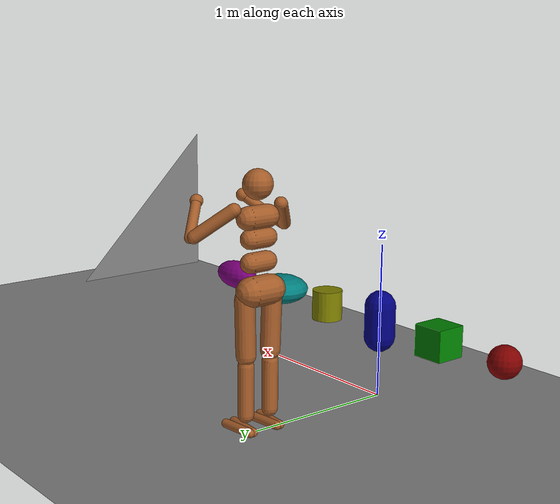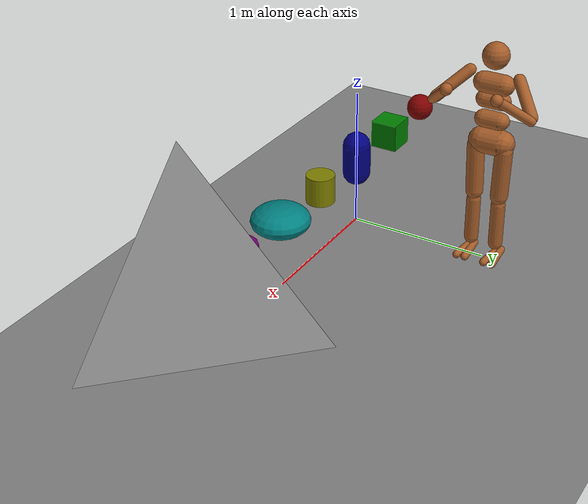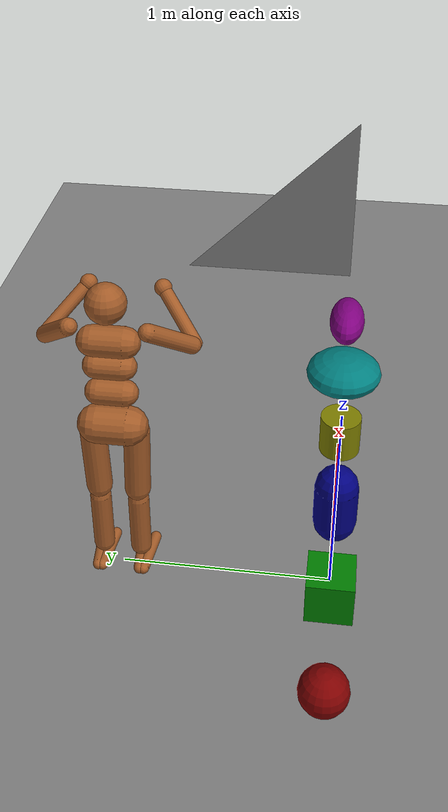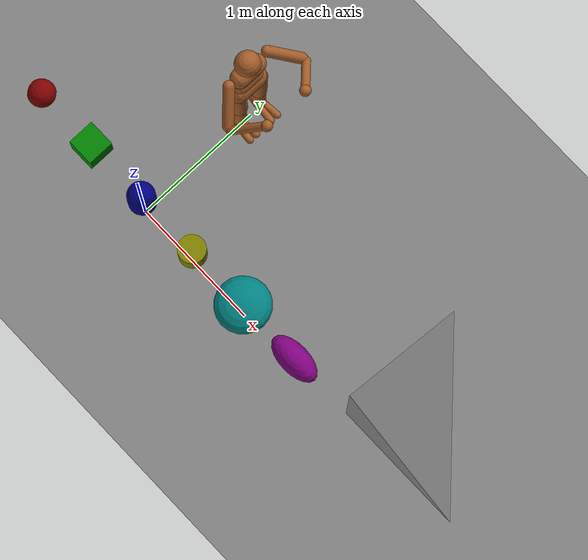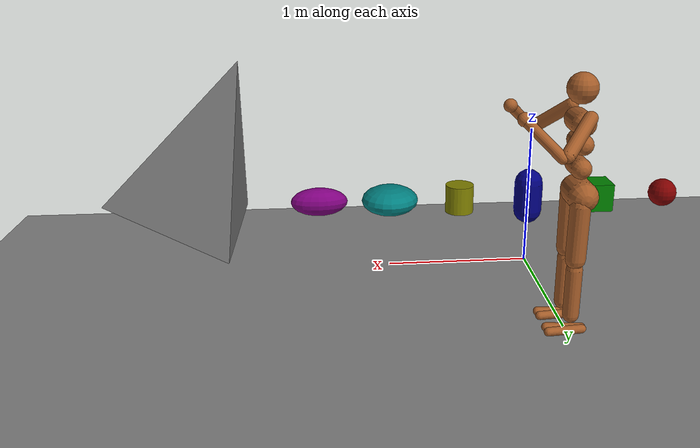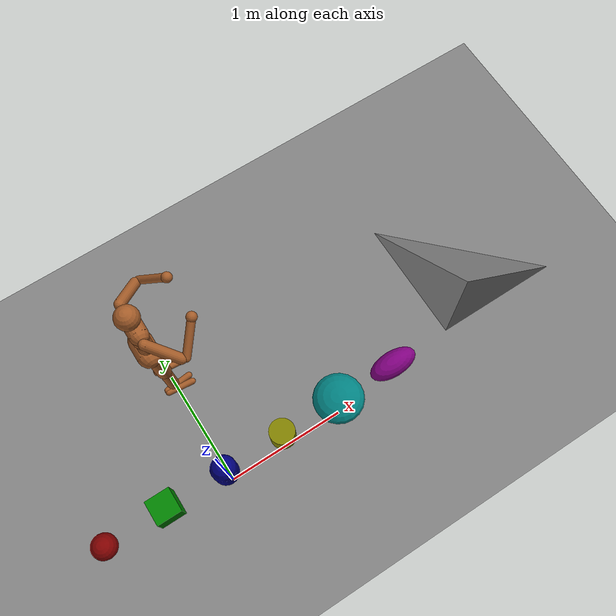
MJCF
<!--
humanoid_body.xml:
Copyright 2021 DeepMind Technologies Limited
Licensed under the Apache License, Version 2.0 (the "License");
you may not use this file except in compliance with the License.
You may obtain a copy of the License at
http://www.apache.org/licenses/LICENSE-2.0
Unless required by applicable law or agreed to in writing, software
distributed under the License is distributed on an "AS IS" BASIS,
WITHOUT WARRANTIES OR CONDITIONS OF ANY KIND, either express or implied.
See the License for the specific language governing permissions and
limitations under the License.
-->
<?xml version="1.0" encoding="utf-8"?>
<mujoco model="inverted_pendulum">
    <compiler angle="radian" meshdir="meshes" autolimits="true" />
    <option timestep="0.002" gravity="0 0 -9.81" integrator="implicitfast" density="1.225"
        viscosity="1.8e-5" />

    <visual>
        <global realtime="1" />
        <quality shadowsize="16384" numslices="28" offsamples="4" />
        <headlight diffuse="1 1 1" specular="0.5 0.5 0.5" active="1" />
        <rgba fog="0 0 0 1" haze="0 1 0 1" />
    </visual>
    <include file="humanoid_body.xml"/>
    <asset>
        <mesh name="tetrahedron" vertex="0 0 0 1 0 0 0 1 0 0 0 1" />
        <texture type="skybox" file="../asset/desert.png"
            gridsize="3 4" gridlayout=".U..LFRB.D.." />
        <texture name="plane" type="2d" builtin="checker" rgb1=".1 .1 .1" rgb2=".9 .9 .9"
            width="512" height="512" mark="cross" markrgb=".8 .8 .8" />
        <material name="plane" reflectance="0.3" texture="plane" texrepeat="1 1" texuniform="true"/>
        <material name="box" rgba="0 0.5 0 1"  emission="0"/>
    </asset>

    <worldbody>
        <geom name="floor" pos="0 0 0" size="0 0 .25" type="plane" material="plane"
            condim="3" />
        <light directional="true" ambient=".3 .3 .3" pos="30 30 30" dir="0 -.5 -1"
            diffuse=".5 .5 .5" specular=".5 .5 .5" />

        <body pos="-1 0 .5">
            <freejoint />
            <geom type="sphere" size="0.1" rgba=".5 0 0 1" />
        </body>
        <body pos="-0.5 0 .5">
            <freejoint />
            <geom type="box" size="0.1 0.1 0.1" material="box"/>
        </body>
        <body pos="0 0 .5">
            <freejoint />
            <geom type="capsule" size="0.1 0.1" rgba="0 0 .5 1" />
        </body>
        <body pos=".5 0 .5">
            <freejoint />
            <geom type="cylinder" size="0.1 0.1" rgba=".5 .5 0 1" />
        </body>
        <body pos="1 0 .5">
            <freejoint />
            <geom type="ellipsoid" size="0.2 0.2 0.1" rgba="0 .5 .5 1" />
        </body>
        <body pos="1.5 0 .5">
            <freejoint />
            <geom type="ellipsoid" size="0.2 0.1 0.1" rgba=".5 0 .5 1" />
        </body>

        <body pos="2.0 0 .5">
            <freejoint />
            <geom type="mesh" mesh="tetrahedron" rgba=".5 .5 .5 1" />
        </body>
    </worldbody>
</mujoco>

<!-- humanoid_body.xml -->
<mujoco model="Humanoid body">

  <asset>
    <texture type="skybox" builtin="gradient" rgb1=".3 .5 .7" rgb2="0 0 0" width="512" height="512"/>
    <texture name="body" type="cube" builtin="flat" mark="cross" width="128" height="128"
             rgb1="0.8 0.6 0.4" rgb2="0.8 0.6 0.4" markrgb="1 1 1"/>
    <material name="body" texture="body" texuniform="true" rgba="0.8 0.6 .4 1"/>
    <texture name="grid" type="2d" builtin="checker" width="512" height="512" rgb1=".1 .2 .3" rgb2=".2 .3 .4"/>
    <material name="grid" texture="grid" texrepeat="1 1" texuniform="true" reflectance=".2"/>
  </asset>

  <default>
    <motor ctrlrange="-1 1" ctrllimited="true"/>
    <default class="body">
      <geom type="capsule" condim="1" friction=".7" solimp=".9 .99 .003" solref=".015 1" material="body"/>
      <joint type="hinge" damping=".2" stiffness="1" armature=".01" limited="true" solimplimit="0 .99 .01"/>
      <default class="big_joint">
        <joint damping="5" stiffness="10"/>
        <default class="big_stiff_joint">
          <joint stiffness="20"/>
        </default>
      </default>
    </default>
  </default>

  <visual>
    <map force="0.1" zfar="30"/>
    <rgba haze="0.15 0.25 0.35 1"/>
    <quality shadowsize="4096"/>
    <global offwidth="800" offheight="800"/>
  </visual>

  <worldbody>
    <body name="torso" pos="0 1 1.3" childclass="body">
      <camera name="back" pos="-3 0 1" xyaxes="0 -1 0 1 0 2" mode="trackcom"/>
      <camera name="side" pos="0 -3 1" xyaxes="1 0 0 0 1 2" mode="trackcom"/>
      <freejoint name="root"/>
      <geom name="torso" fromto="0 -.07 0 0 .07 0" size=".07"/>
      <geom name="upper_waist" fromto="-.01 -.06 -.12 -.01 .06 -.12" size=".06"/>
      <body name="head" pos="0 0 .19">
        <geom name="head" type="sphere" size=".09"/>
        <camera name="egocentric" pos=".09 0 0" xyaxes="0 -1 0 .1 0 1" fovy="80"/>
      </body>
      <body name="lower_waist" pos="-.01 0 -.26">
        <geom name="lower_waist" fromto="0 -.06 0 0 .06 0" size=".06"/>
        <joint name="abdomen_z" pos="0 0 .065" axis="0 0 1" range="-45 45" class="big_stiff_joint"/>
        <joint name="abdomen_y" pos="0 0 .065" axis="0 1 0" range="-75 30" class="big_joint"/>
        <body name="pelvis" pos="0 0 -.165">
          <joint name="abdomen_x" pos="0 0 .1" axis="1 0 0" range="-35 35" class="big_joint"/>
          <geom name="butt" fromto="-.02 -.07 0 -.02 .07 0" size=".09"/>
          <body name="right_thigh" pos="0 -.1 -.04">
            <joint name="right_hip_x" axis="1 0 0" range="-25 5" class="big_joint"/>
            <joint name="right_hip_z" axis="0 0 1" range="-60 35" class="big_joint"/>
            <joint name="right_hip_y" axis="0 1 0" range="-110 20" class="big_stiff_joint"/>
            <geom name="right_thigh" fromto="0 0 0 0 .01 -.34" size=".06"/>
            <body name="right_shin" pos="0 .01 -.403">
              <joint name="right_knee" pos="0 0 .02" axis="0 -1 0" range="-160 2"/>
              <geom name="right_shin" fromto="0 0 0 0 0 -.3"  size=".049"/>
              <body name="right_foot" pos="0 0 -.39">
                <joint name="right_ankle_y" pos="0 0 .08" axis="0 1 0" range="-50 50" stiffness="6"/>
                <joint name="right_ankle_x" pos="0 0 .04" axis="1 0 .5" range="-50 50" stiffness="3"/>
                <geom name="right_right_foot" fromto="-.07 -.02 0 .14 -.04 0" size=".027"/>
                <geom name="left_right_foot" fromto="-.07 0 0 .14  .02 0" size=".027"/>
              </body>
            </body>
          </body>
          <body name="left_thigh" pos="0 .1 -.04">
            <joint name="left_hip_x" axis="-1 0 0" range="-25 5" class="big_joint"/>
            <joint name="left_hip_z" axis="0 0 -1" range="-60 35" class="big_joint"/>
            <joint name="left_hip_y" axis="0 1 0" range="-110 20" class="big_stiff_joint"/>
            <geom name="left_thigh" fromto="0 0 0 0 -.01 -.34" size=".06"/>
            <body name="left_shin" pos="0 -.01 -.403">
              <joint name="left_knee" pos="0 0 .02" axis="0 -1 0" range="-160 2"/>
              <geom name="left_shin" fromto="0 0 0 0 0 -.3"  size=".049"/>
              <body name="left_foot" pos="0 0 -.39">
                <joint name="left_ankle_y" pos="0 0 .08" axis="0 1 0" range="-50 50" stiffness="6"/>
                <joint name="left_ankle_x" pos="0 0 .04" axis="1 0 .5" range="-50 50" stiffness="3"/>
                <geom name="left_left_foot" fromto="-.07 .02 0 .14 .04 0" size=".027"/>
                <geom name="right_left_foot" fromto="-.07 0 0 .14 -.02 0" size=".027"/>
              </body>
            </body>
          </body>
        </body>
      </body>
      <body name="right_upper_arm" pos="0 -.17 .06">
        <joint name="right_shoulder1" axis="2 1 1"  range="-85 60"/>
        <joint name="right_shoulder2" axis="0 -1 1" range="-85 60"/>
        <geom name="right_upper_arm" fromto="0 0 0 .16 -.16 -.16" size=".04 .16"/>
        <body name="right_lower_arm" pos=".18 -.18 -.18">
          <joint name="right_elbow" axis="0 -1 1" range="-90 50" stiffness="0"/>
          <geom name="right_lower_arm" fromto=".01 .01 .01 .17 .17 .17" size=".031"/>
          <body name="right_hand" pos=".18 .18 .18">
            <geom name="right_hand" type="sphere" size=".04" zaxis="1 1 1"/>
          </body>
        </body>
      </body>
      <body name="left_upper_arm" pos="0 .17 .06">
        <joint name="left_shoulder1" axis="2 -1 1" range="-60 85"/>
        <joint name="left_shoulder2" axis="0 1 1"  range="-60 85"/>
        <geom name="left_upper_arm" fromto="0 0 0 .16 .16 -.16" size=".04 .16"/>
        <body name="left_lower_arm" pos=".18 .18 -.18">
          <joint name="left_elbow" axis="0 -1 -1" range="-90 50" stiffness="0"/>
          <geom name="left_lower_arm" fromto=".01 -.01 .01 .17 -.17 .17" size=".031"/>
          <body name="left_hand" pos=".18 -.18 .18">
            <geom name="left_hand" type="sphere" size=".04" zaxis="1 -1 1"/>
          </body>
        </body>
      </body>
    </body>
  </worldbody>

  <actuator>
    <motor name="abdomen_y"       gear="40"  joint="abdomen_y"/>
    <motor name="abdomen_z"       gear="40"  joint="abdomen_z"/>
    <motor name="abdomen_x"       gear="40"  joint="abdomen_x"/>
    <motor name="right_hip_x"     gear="40"  joint="right_hip_x"/>
    <motor name="right_hip_z"     gear="40"  joint="right_hip_z"/>
    <motor name="right_hip_y"     gear="120" joint="right_hip_y"/>
    <motor name="right_knee"      gear="80"  joint="right_knee"/>
    <motor name="right_ankle_x"   gear="20"  joint="right_ankle_x"/>
    <motor name="right_ankle_y"   gear="20"  joint="right_ankle_y"/>
    <motor name="left_hip_x"      gear="40"  joint="left_hip_x"/>
    <motor name="left_hip_z"      gear="40"  joint="left_hip_z"/>
    <motor name="left_hip_y"      gear="120" joint="left_hip_y"/>
    <motor name="left_knee"       gear="80"  joint="left_knee"/>
    <motor name="left_ankle_x"    gear="20"  joint="left_ankle_x"/>
    <motor name="left_ankle_y"    gear="20"  joint="left_ankle_y"/>
    <motor name="right_shoulder1" gear="20"  joint="right_shoulder1"/>
    <motor name="right_shoulder2" gear="20"  joint="right_shoulder2"/>
    <motor name="right_elbow"     gear="40"  joint="right_elbow"/>
    <motor name="left_shoulder1"  gear="20"  joint="left_shoulder1"/>
    <motor name="left_shoulder2"  gear="20"  joint="left_shoulder2"/>
    <motor name="left_elbow"      gear="40"  joint="left_elbow"/>
  </actuator>
</mujoco>
